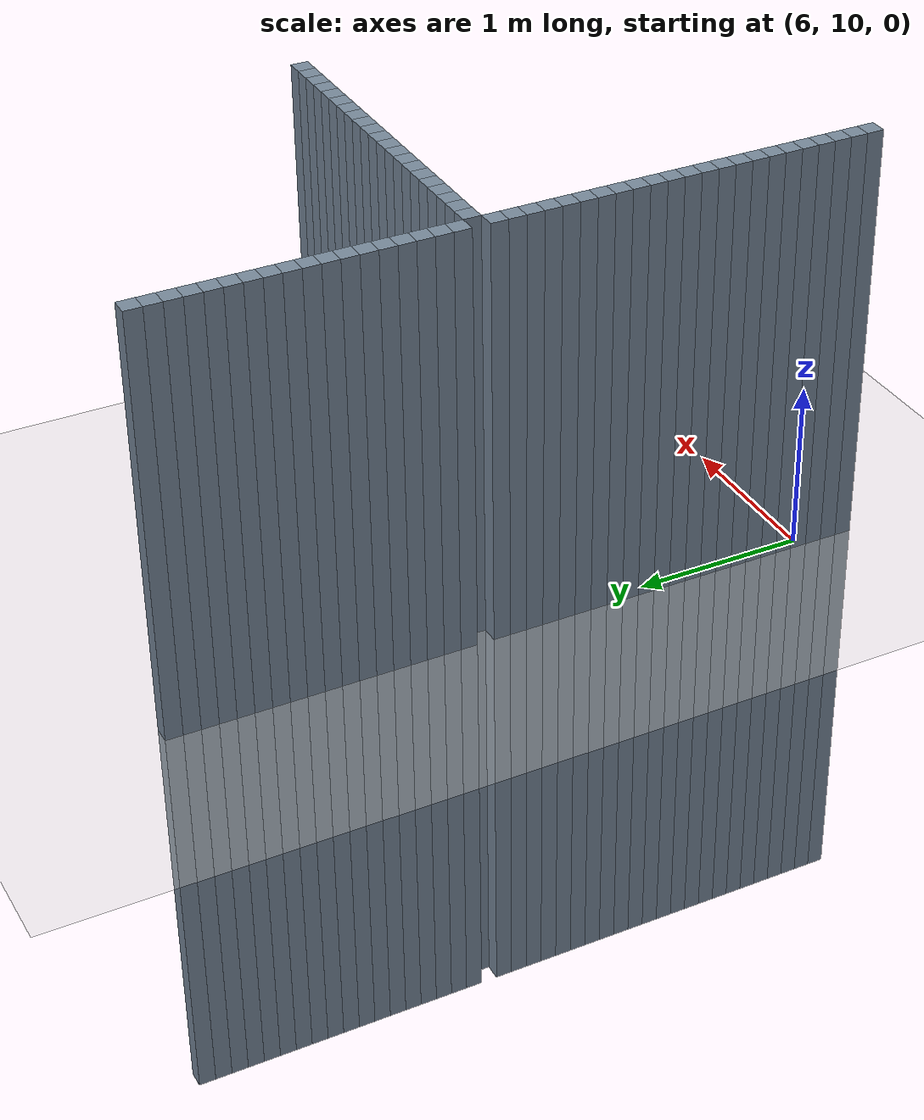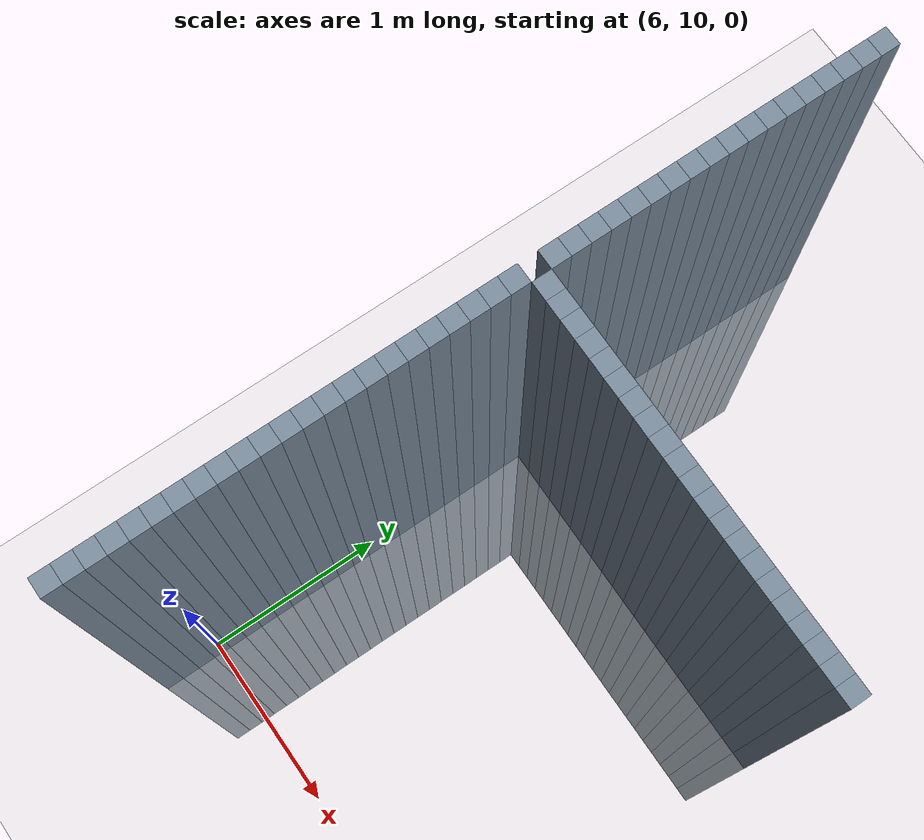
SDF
<sdf version="1.6">
 <world name="default">
  <model name="ground_plane">
   <static>1</static>
   <link name="link">
    <collision name="collision">
     <geometry><plane><normal>0 0 1</normal><size>100 100</size></plane></geometry>
     <surface><friction><ode><mu>100</mu><mu2>50</mu2></ode></friction></surface>
    </collision>
    <visual name="visual">
     <cast_shadows>0</cast_shadows>
     <geometry><plane><normal>0 0 1</normal><size>100 100</size></plane></geometry>
     <material>
      <script><uri>file://media/materials/scripts/gazebo.material</uri><name>Gazebo/Grey</name></script>
     </material>
    </visual>
   </link>
  </model>
  <model name="unit_cylinder_278">
   <static>1</static>
   <pose>6 9.7 0 0 -0 0</pose>
   <link name="link">
    <inertial>
     <mass>1</mass>
     <inertia><ixx>0.145833</ixx><ixy>0</ixy><ixz>0</ixz><iyy>0.145833</iyy><iyz>0</iyz><izz>0.125</izz></inertia>
    </inertial>
    <collision name="collision"><geometry><box><size>0.1 0.1 5</size></box></geometry></collision>
    <visual name="visual">
     <geometry><box><size>0.1 0.1 5</size></box></geometry>
     <material><ambient>0.466667 0.533333 0.6 1</ambient><diffuse>0.466667 0.533333 0.6 1</diffuse></material>
     <material>
      <script><name>Gazebo/Grey</name><uri>file://media/materials/scripts/gazebo.material</uri></script>
     </material>
    </visual>
   </link>
  </model>
  <model name="unit_cylinder_279">
   <static>1</static>
   <pose>6 9.8 0 0 -0 0</pose>
   <link name="link">
    <inertial>
     <mass>1</mass>
     <inertia><ixx>0.145833</ixx><ixy>0</ixy><ixz>0</ixz><iyy>0.145833</iyy><iyz>0</iyz><izz>0.125</izz></inertia>
    </inertial>
    <collision name="collision"><geometry><box><size>0.1 0.1 5</size></box></geometry></collision>
    <visual name="visual">
     <geometry><box><size>0.1 0.1 5</size></box></geometry>
     <material><ambient>0.466667 0.533333 0.6 1</ambient><diffuse>0.466667 0.533333 0.6 1</diffuse></material>
     <material>
      <script><name>Gazebo/Grey</name><uri>file://media/materials/scripts/gazebo.material</uri></script>
     </material>
    </visual>
   </link>
  </model>
  <model name="unit_cylinder_280">
   <static>1</static>
   <pose>6 9.9 0 0 -0 0</pose>
   <link name="link">
    <inertial>
     <mass>1</mass>
     <inertia><ixx>0.145833</ixx><ixy>0</ixy><ixz>0</ixz><iyy>0.145833</iyy><iyz>0</iyz><izz>0.125</izz></inertia>
    </inertial>
    <collision name="collision"><geometry><box><size>0.1 0.1 5</size></box></geometry></collision>
    <visual name="visual">
     <geometry><box><size>0.1 0.1 5</size></box></geometry>
     <material><ambient>0.466667 0.533333 0.6 1</ambient><diffuse>0.466667 0.533333 0.6 1</diffuse></material>
     <material>
      <script><name>Gazebo/Grey</name><uri>file://media/materials/scripts/gazebo.material</uri></script>
     </material>
    </visual>
   </link>
  </model>
  <model name="unit_cylinder_281">
   <static>1</static>
   <pose>6 10 0 0 -0 0</pose>
   <link name="link">
    <inertial>
     <mass>1</mass>
     <inertia><ixx>0.145833</ixx><ixy>0</ixy><ixz>0</ixz><iyy>0.145833</iyy><iyz>0</iyz><izz>0.125</izz></inertia>
    </inertial>
    <collision name="collision"><geometry><box><size>0.1 0.1 5</size></box></geometry></collision>
    <visual name="visual">
     <geometry><box><size>0.1 0.1 5</size></box></geometry>
     <material><ambient>0.466667 0.533333 0.6 1</ambient><diffuse>0.466667 0.533333 0.6 1</diffuse></material>
     <material>
      <script><name>Gazebo/Grey</name><uri>file://media/materials/scripts/gazebo.material</uri></script>
     </material>
    </visual>
   </link>
  </model>
  <model name="unit_cylinder_282">
   <static>1</static>
   <pose>6 10.1 0 0 -0 0</pose>
   <link name="link">
    <inertial>
     <mass>1</mass>
     <inertia><ixx>0.145833</ixx><ixy>0</ixy><ixz>0</ixz><iyy>0.145833</iyy><iyz>0</iyz><izz>0.125</izz></inertia>
    </inertial>
    <collision name="collision"><geometry><box><size>0.1 0.1 5</size></box></geometry></collision>
    <visual name="visual">
     <geometry><box><size>0.1 0.1 5</size></box></geometry>
     <material><ambient>0.466667 0.533333 0.6 1</ambient><diffuse>0.466667 0.533333 0.6 1</diffuse></material>
     <material>
      <script><name>Gazebo/Grey</name><uri>file://media/materials/scripts/gazebo.material</uri></script>
     </material>
    </visual>
   </link>
  </model>
  <model name="unit_cylinder_283">
   <static>1</static>
   <pose>6 10.2 0 0 -0 0</pose>
   <link name="link">
    <inertial>
     <mass>1</mass>
     <inertia><ixx>0.145833</ixx><ixy>0</ixy><ixz>0</ixz><iyy>0.145833</iyy><iyz>0</iyz><izz>0.125</izz></inertia>
    </inertial>
    <collision name="collision"><geometry><box><size>0.1 0.1 5</size></box></geometry></collision>
    <visual name="visual">
     <geometry><box><size>0.1 0.1 5</size></box></geometry>
     <material><ambient>0.466667 0.533333 0.6 1</ambient><diffuse>0.466667 0.533333 0.6 1</diffuse></material>
     <material>
      <script><name>Gazebo/Grey</name><uri>file://media/materials/scripts/gazebo.material</uri></script>
     </material>
    </visual>
   </link>
  </model>
  <model name="unit_cylinder_284">
   <static>1</static>
   <pose>6 10.3 0 0 -0 0</pose>
   <link name="link">
    <inertial>
     <mass>1</mass>
     <inertia><ixx>0.145833</ixx><ixy>0</ixy><ixz>0</ixz><iyy>0.145833</iyy><iyz>0</iyz><izz>0.125</izz></inertia>
    </inertial>
    <collision name="collision"><geometry><box><size>0.1 0.1 5</size></box></geometry></collision>
    <visual name="visual">
     <geometry><box><size>0.1 0.1 5</size></box></geometry>
     <material><ambient>0.466667 0.533333 0.6 1</ambient><diffuse>0.466667 0.533333 0.6 1</diffuse></material>
     <material>
      <script><name>Gazebo/Grey</name><uri>file://media/materials/scripts/gazebo.material</uri></script>
     </material>
    </visual>
   </link>
  </model>
  <model name="unit_cylinder_285">
   <static>1</static>
   <pose>6 10.4 0 0 -0 0</pose>
   <link name="link">
    <inertial>
     <mass>1</mass>
     <inertia><ixx>0.145833</ixx><ixy>0</ixy><ixz>0</ixz><iyy>0.145833</iyy><iyz>0</iyz><izz>0.125</izz></inertia>
    </inertial>
    <collision name="collision"><geometry><box><size>0.1 0.1 5</size></box></geometry></collision>
    <visual name="visual">
     <geometry><box><size>0.1 0.1 5</size></box></geometry>
     <material><ambient>0.466667 0.533333 0.6 1</ambient><diffuse>0.466667 0.533333 0.6 1</diffuse></material>
     <material>
      <script><name>Gazebo/Grey</name><uri>file://media/materials/scripts/gazebo.material</uri></script>
     </material>
    </visual>
   </link>
  </model>
  <model name="unit_cylinder_286">
   <static>1</static>
   <pose>6 10.5 0 0 -0 0</pose>
   <link name="link">
    <inertial>
     <mass>1</mass>
     <inertia><ixx>0.145833</ixx><ixy>0</ixy><ixz>0</ixz><iyy>0.145833</iyy><iyz>0</iyz><izz>0.125</izz></inertia>
    </inertial>
    <collision name="collision"><geometry><box><size>0.1 0.1 5</size></box></geometry></collision>
    <visual name="visual">
     <geometry><box><size>0.1 0.1 5</size></box></geometry>
     <material><ambient>0.466667 0.533333 0.6 1</ambient><diffuse>0.466667 0.533333 0.6 1</diffuse></material>
     <material>
      <script><name>Gazebo/Grey</name><uri>file://media/materials/scripts/gazebo.material</uri></script>
     </material>
    </visual>
   </link>
  </model>
  <model name="unit_cylinder_287">
   <static>1</static>
   <pose>6 10.6 0 0 -0 0</pose>
   <link name="link">
    <inertial>
     <mass>1</mass>
     <inertia><ixx>0.145833</ixx><ixy>0</ixy><ixz>0</ixz><iyy>0.145833</iyy><iyz>0</iyz><izz>0.125</izz></inertia>
    </inertial>
    <collision name="collision"><geometry><box><size>0.1 0.1 5</size></box></geometry></collision>
    <visual name="visual">
     <geometry><box><size>0.1 0.1 5</size></box></geometry>
     <material><ambient>0.466667 0.533333 0.6 1</ambient><diffuse>0.466667 0.533333 0.6 1</diffuse></material>
     <material>
      <script><name>Gazebo/Grey</name><uri>file://media/materials/scripts/gazebo.material</uri></script>
     </material>
    </visual>
   </link>
  </model>
  <model name="unit_cylinder_288">
   <static>1</static>
   <pose>6 10.7 0 0 -0 0</pose>
   <link name="link">
    <inertial>
     <mass>1</mass>
     <inertia><ixx>0.145833</ixx><ixy>0</ixy><ixz>0</ixz><iyy>0.145833</iyy><iyz>0</iyz><izz>0.125</izz></inertia>
    </inertial>
    <collision name="collision"><geometry><box><size>0.1 0.1 5</size></box></geometry></collision>
    <visual name="visual">
     <geometry><box><size>0.1 0.1 5</size></box></geometry>
     <material><ambient>0.466667 0.533333 0.6 1</ambient><diffuse>0.466667 0.533333 0.6 1</diffuse></material>
     <material>
      <script><name>Gazebo/Grey</name><uri>file://media/materials/scripts/gazebo.material</uri></script>
     </material>
    </visual>
   </link>
  </model>
  <model name="unit_cylinder_289">
   <static>1</static>
   <pose>6 10.8 0 0 -0 0</pose>
   <link name="link">
    <inertial>
     <mass>1</mass>
     <inertia><ixx>0.145833</ixx><ixy>0</ixy><ixz>0</ixz><iyy>0.145833</iyy><iyz>0</iyz><izz>0.125</izz></inertia>
    </inertial>
    <collision name="collision"><geometry><box><size>0.1 0.1 5</size></box></geometry></collision>
    <visual name="visual">
     <geometry><box><size>0.1 0.1 5</size></box></geometry>
     <material><ambient>0.466667 0.533333 0.6 1</ambient><diffuse>0.466667 0.533333 0.6 1</diffuse></material>
     <material>
      <script><name>Gazebo/Grey</name><uri>file://media/materials/scripts/gazebo.material</uri></script>
     </material>
    </visual>
   </link>
  </model>
  <model name="unit_cylinder_290">
   <static>1</static>
   <pose>6 10.9 0 0 -0 0</pose>
   <link name="link">
    <inertial>
     <mass>1</mass>
     <inertia><ixx>0.145833</ixx><ixy>0</ixy><ixz>0</ixz><iyy>0.145833</iyy><iyz>0</iyz><izz>0.125</izz></inertia>
    </inertial>
    <collision name="collision"><geometry><box><size>0.1 0.1 5</size></box></geometry></collision>
    <visual name="visual">
     <geometry><box><size>0.1 0.1 5</size></box></geometry>
     <material><ambient>0.466667 0.533333 0.6 1</ambient><diffuse>0.466667 0.533333 0.6 1</diffuse></material>
     <material>
      <script><name>Gazebo/Grey</name><uri>file://media/materials/scripts/gazebo.material</uri></script>
     </material>
    </visual>
   </link>
  </model>
  <model name="unit_cylinder_291">
   <static>1</static>
   <pose>6 11 0 0 -0 0</pose>
   <link name="link">
    <inertial>
     <mass>1</mass>
     <inertia><ixx>0.145833</ixx><ixy>0</ixy><ixz>0</ixz><iyy>0.145833</iyy><iyz>0</iyz><izz>0.125</izz></inertia>
    </inertial>
    <collision name="collision"><geometry><box><size>0.1 0.1 5</size></box></geometry></collision>
    <visual name="visual">
     <geometry><box><size>0.1 0.1 5</size></box></geometry>
     <material><ambient>0.466667 0.533333 0.6 1</ambient><diffuse>0.466667 0.533333 0.6 1</diffuse></material>
     <material>
      <script><name>Gazebo/Grey</name><uri>file://media/materials/scripts/gazebo.material</uri></script>
     </material>
    </visual>
   </link>
  </model>
  <model name="unit_cylinder_292">
   <static>1</static>
   <pose>6 11.1 0 0 -0 0</pose>
   <link name="link">
    <inertial>
     <mass>1</mass>
     <inertia><ixx>0.145833</ixx><ixy>0</ixy><ixz>0</ixz><iyy>0.145833</iyy><iyz>0</iyz><izz>0.125</izz></inertia>
    </inertial>
    <collision name="collision"><geometry><box><size>0.1 0.1 5</size></box></geometry></collision>
    <visual name="visual">
     <geometry><box><size>0.1 0.1 5</size></box></geometry>
     <material><ambient>0.466667 0.533333 0.6 1</ambient><diffuse>0.466667 0.533333 0.6 1</diffuse></material>
     <material>
      <script><name>Gazebo/Grey</name><uri>file://media/materials/scripts/gazebo.material</uri></script>
     </material>
    </visual>
   </link>
  </model>
  <model name="unit_cylinder_293">
   <static>1</static>
   <pose>6 11.2 0 0 -0 0</pose>
   <link name="link">
    <inertial>
     <mass>1</mass>
     <inertia><ixx>0.145833</ixx><ixy>0</ixy><ixz>0</ixz><iyy>0.145833</iyy><iyz>0</iyz><izz>0.125</izz></inertia>
    </inertial>
    <collision name="collision"><geometry><box><size>0.1 0.1 5</size></box></geometry></collision>
    <visual name="visual">
     <geometry><box><size>0.1 0.1 5</size></box></geometry>
     <material><ambient>0.466667 0.533333 0.6 1</ambient><diffuse>0.466667 0.533333 0.6 1</diffuse></material>
     <material>
      <script><name>Gazebo/Grey</name><uri>file://media/materials/scripts/gazebo.material</uri></script>
     </material>
    </visual>
   </link>
  </model>
  <model name="unit_cylinder_294">
   <static>1</static>
   <pose>6 11.3 0 0 -0 0</pose>
   <link name="link">
    <inertial>
     <mass>1</mass>
     <inertia><ixx>0.145833</ixx><ixy>0</ixy><ixz>0</ixz><iyy>0.145833</iyy><iyz>0</iyz><izz>0.125</izz></inertia>
    </inertial>
    <collision name="collision"><geometry><box><size>0.1 0.1 5</size></box></geometry></collision>
    <visual name="visual">
     <geometry><box><size>0.1 0.1 5</size></box></geometry>
     <material><ambient>0.466667 0.533333 0.6 1</ambient><diffuse>0.466667 0.533333 0.6 1</diffuse></material>
     <material>
      <script><name>Gazebo/Grey</name><uri>file://media/materials/scripts/gazebo.material</uri></script>
     </material>
    </visual>
   </link>
  </model>
  <model name="unit_cylinder_295">
   <static>1</static>
   <pose>6 11.4 0 0 -0 0</pose>
   <link name="link">
    <inertial>
     <mass>1</mass>
     <inertia><ixx>0.145833</ixx><ixy>0</ixy><ixz>0</ixz><iyy>0.145833</iyy><iyz>0</iyz><izz>0.125</izz></inertia>
    </inertial>
    <collision name="collision"><geometry><box><size>0.1 0.1 5</size></box></geometry></collision>
    <visual name="visual">
     <geometry><box><size>0.1 0.1 5</size></box></geometry>
     <material><ambient>0.466667 0.533333 0.6 1</ambient><diffuse>0.466667 0.533333 0.6 1</diffuse></material>
     <material>
      <script><name>Gazebo/Grey</name><uri>file://media/materials/scripts/gazebo.material</uri></script>
     </material>
    </visual>
   </link>
  </model>
  <model name="unit_cylinder_296">
   <static>1</static>
   <pose>6 11.5 0 0 -0 0</pose>
   <link name="link">
    <inertial>
     <mass>1</mass>
     <inertia><ixx>0.145833</ixx><ixy>0</ixy><ixz>0</ixz><iyy>0.145833</iyy><iyz>0</iyz><izz>0.125</izz></inertia>
    </inertial>
    <collision name="collision"><geometry><box><size>0.1 0.1 5</size></box></geometry></collision>
    <visual name="visual">
     <geometry><box><size>0.1 0.1 5</size></box></geometry>
     <material><ambient>0.466667 0.533333 0.6 1</ambient><diffuse>0.466667 0.533333 0.6 1</diffuse></material>
     <material>
      <script><name>Gazebo/Grey</name><uri>file://media/materials/scripts/gazebo.material</uri></script>
     </material>
    </visual>
   </link>
  </model>
  <model name="unit_cylinder_297">
   <static>1</static>
   <pose>6 11.6 0 0 -0 0</pose>
   <link name="link">
    <inertial>
     <mass>1</mass>
     <inertia><ixx>0.145833</ixx><ixy>0</ixy><ixz>0</ixz><iyy>0.145833</iyy><iyz>0</iyz><izz>0.125</izz></inertia>
    </inertial>
    <collision name="collision"><geometry><box><size>0.1 0.1 5</size></box></geometry></collision>
    <visual name="visual">
     <geometry><box><size>0.1 0.1 5</size></box></geometry>
     <material><ambient>0.466667 0.533333 0.6 1</ambient><diffuse>0.466667 0.533333 0.6 1</diffuse></material>
     <material>
      <script><name>Gazebo/Grey</name><uri>file://media/materials/scripts/gazebo.material</uri></script>
     </material>
    </visual>
   </link>
  </model>
  <model name="unit_cylinder_298">
   <static>1</static>
   <pose>6 11.7 0 0 -0 0</pose>
   <link name="link">
    <inertial>
     <mass>1</mass>
     <inertia><ixx>0.145833</ixx><ixy>0</ixy><ixz>0</ixz><iyy>0.145833</iyy><iyz>0</iyz><izz>0.125</izz></inertia>
    </inertial>
    <collision name="collision"><geometry><box><size>0.1 0.1 5</size></box></geometry></collision>
    <visual name="visual">
     <geometry><box><size>0.1 0.1 5</size></box></geometry>
     <material><ambient>0.466667 0.533333 0.6 1</ambient><diffuse>0.466667 0.533333 0.6 1</diffuse></material>
     <material>
      <script><name>Gazebo/Grey</name><uri>file://media/materials/scripts/gazebo.material</uri></script>
     </material>
    </visual>
   </link>
  </model>
  <model name="unit_cylinder_299">
   <static>1</static>
   <pose>6 11.8 0 0 -0 0</pose>
   <link name="link">
    <inertial>
     <mass>1</mass>
     <inertia><ixx>0.145833</ixx><ixy>0</ixy><ixz>0</ixz><iyy>0.145833</iyy><iyz>0</iyz><izz>0.125</izz></inertia>
    </inertial>
    <collision name="collision"><geometry><box><size>0.1 0.1 5</size></box></geometry></collision>
    <visual name="visual">
     <geometry><box><size>0.1 0.1 5</size></box></geometry>
     <material><ambient>0.466667 0.533333 0.6 1</ambient><diffuse>0.466667 0.533333 0.6 1</diffuse></material>
     <material>
      <script><name>Gazebo/Grey</name><uri>file://media/materials/scripts/gazebo.material</uri></script>
     </material>
    </visual>
   </link>
  </model>
  <model name="unit_cylinder_300">
   <static>1</static>
   <pose>6 11.9 0 0 -0 0</pose>
   <link name="link">
    <inertial>
     <mass>1</mass>
     <inertia><ixx>0.145833</ixx><ixy>0</ixy><ixz>0</ixz><iyy>0.145833</iyy><iyz>0</iyz><izz>0.125</izz></inertia>
    </inertial>
    <collision name="collision"><geometry><box><size>0.1 0.1 5</size></box></geometry></collision>
    <visual name="visual">
     <geometry><box><size>0.1 0.1 5</size></box></geometry>
     <material><ambient>0.466667 0.533333 0.6 1</ambient><diffuse>0.466667 0.533333 0.6 1</diffuse></material>
     <material>
      <script><name>Gazebo/Grey</name><uri>file://media/materials/scripts/gazebo.material</uri></script>
     </material>
    </visual>
   </link>
  </model>
  <model name="unit_cylinder_302">
   <static>1</static>
   <pose>6 12.1 0 0 -0 0</pose>
   <link name="link">
    <inertial>
     <mass>1</mass>
     <inertia><ixx>0.145833</ixx><ixy>0</ixy><ixz>0</ixz><iyy>0.145833</iyy><iyz>0</iyz><izz>0.125</izz></inertia>
    </inertial>
    <collision name="collision"><geometry><box><size>0.1 0.1 5</size></box></geometry></collision>
    <visual name="visual">
     <geometry><box><size>0.1 0.1 5</size></box></geometry>
     <material><ambient>0.466667 0.533333 0.6 1</ambient><diffuse>0.466667 0.533333 0.6 1</diffuse></material>
     <material>
      <script><name>Gazebo/Grey</name><uri>file://media/materials/scripts/gazebo.material</uri></script>
     </material>
    </visual>
   </link>
  </model>
  <model name="unit_cylinder_303">
   <static>1</static>
   <pose>6 12.2 0 0 -0 0</pose>
   <link name="link">
    <inertial>
     <mass>1</mass>
     <inertia><ixx>0.145833</ixx><ixy>0</ixy><ixz>0</ixz><iyy>0.145833</iyy><iyz>0</iyz><izz>0.125</izz></inertia>
    </inertial>
    <collision name="collision"><geometry><box><size>0.1 0.1 5</size></box></geometry></collision>
    <visual name="visual">
     <geometry><box><size>0.1 0.1 5</size></box></geometry>
     <material><ambient>0.466667 0.533333 0.6 1</ambient><diffuse>0.466667 0.533333 0.6 1</diffuse></material>
     <material>
      <script><name>Gazebo/Grey</name><uri>file://media/materials/scripts/gazebo.material</uri></script>
     </material>
    </visual>
   </link>
  </model>
  <model name="unit_cylinder_304">
   <static>1</static>
   <pose>6 12.3 0 0 -0 0</pose>
   <link name="link">
    <inertial>
     <mass>1</mass>
     <inertia><ixx>0.145833</ixx><ixy>0</ixy><ixz>0</ixz><iyy>0.145833</iyy><iyz>0</iyz><izz>0.125</izz></inertia>
    </inertial>
    <collision name="collision"><geometry><box><size>0.1 0.1 5</size></box></geometry></collision>
    <visual name="visual">
     <geometry><box><size>0.1 0.1 5</size></box></geometry>
     <material><ambient>0.466667 0.533333 0.6 1</ambient><diffuse>0.466667 0.533333 0.6 1</diffuse></material>
     <material>
      <script><name>Gazebo/Grey</name><uri>file://media/materials/scripts/gazebo.material</uri></script>
     </material>
    </visual>
   </link>
  </model>
  <model name="unit_cylinder_305">
   <static>1</static>
   <pose>6 12.4 0 0 -0 0</pose>
   <link name="link">
    <inertial>
     <mass>1</mass>
     <inertia><ixx>0.145833</ixx><ixy>0</ixy><ixz>0</ixz><iyy>0.145833</iyy><iyz>0</iyz><izz>0.125</izz></inertia>
    </inertial>
    <collision name="collision"><geometry><box><size>0.1 0.1 5</size></box></geometry></collision>
    <visual name="visual">
     <geometry><box><size>0.1 0.1 5</size></box></geometry>
     <material><ambient>0.466667 0.533333 0.6 1</ambient><diffuse>0.466667 0.533333 0.6 1</diffuse></material>
     <material>
      <script><name>Gazebo/Grey</name><uri>file://media/materials/scripts/gazebo.material</uri></script>
     </material>
    </visual>
   </link>
  </model>
  <model name="unit_cylinder_306">
   <static>1</static>
   <pose>6 12.5 0 0 -0 0</pose>
   <link name="link">
    <inertial>
     <mass>1</mass>
     <inertia><ixx>0.145833</ixx><ixy>0</ixy><ixz>0</ixz><iyy>0.145833</iyy><iyz>0</iyz><izz>0.125</izz></inertia>
    </inertial>
    <collision name="collision"><geometry><box><size>0.1 0.1 5</size></box></geometry></collision>
    <visual name="visual">
     <geometry><box><size>0.1 0.1 5</size></box></geometry>
     <material><ambient>0.466667 0.533333 0.6 1</ambient><diffuse>0.466667 0.533333 0.6 1</diffuse></material>
     <material>
      <script><name>Gazebo/Grey</name><uri>file://media/materials/scripts/gazebo.material</uri></script>
     </material>
    </visual>
   </link>
  </model>
  <model name="unit_cylinder_307">
   <static>1</static>
   <pose>6 12.6 0 0 -0 0</pose>
   <link name="link">
    <inertial>
     <mass>1</mass>
     <inertia><ixx>0.145833</ixx><ixy>0</ixy><ixz>0</ixz><iyy>0.145833</iyy><iyz>0</iyz><izz>0.125</izz></inertia>
    </inertial>
    <collision name="collision"><geometry><box><size>0.1 0.1 5</size></box></geometry></collision>
    <visual name="visual">
     <geometry><box><size>0.1 0.1 5</size></box></geometry>
     <material><ambient>0.466667 0.533333 0.6 1</ambient><diffuse>0.466667 0.533333 0.6 1</diffuse></material>
     <material>
      <script><name>Gazebo/Grey</name><uri>file://media/materials/scripts/gazebo.material</uri></script>
     </material>
    </visual>
   </link>
  </model>
  <model name="unit_cylinder_308">
   <static>1</static>
   <pose>6 12.7 0 0 -0 0</pose>
   <link name="link">
    <inertial>
     <mass>1</mass>
     <inertia><ixx>0.145833</ixx><ixy>0</ixy><ixz>0</ixz><iyy>0.145833</iyy><iyz>0</iyz><izz>0.125</izz></inertia>
    </inertial>
    <collision name="collision"><geometry><box><size>0.1 0.1 5</size></box></geometry></collision>
    <visual name="visual">
     <geometry><box><size>0.1 0.1 5</size></box></geometry>
     <material><ambient>0.466667 0.533333 0.6 1</ambient><diffuse>0.466667 0.533333 0.6 1</diffuse></material>
     <material>
      <script><name>Gazebo/Grey</name><uri>file://media/materials/scripts/gazebo.material</uri></script>
     </material>
    </visual>
   </link>
  </model>
  <model name="unit_cylinder_309">
   <static>1</static>
   <pose>6 12.8 0 0 -0 0</pose>
   <link name="link">
    <inertial>
     <mass>1</mass>
     <inertia><ixx>0.145833</ixx><ixy>0</ixy><ixz>0</ixz><iyy>0.145833</iyy><iyz>0</iyz><izz>0.125</izz></inertia>
    </inertial>
    <collision name="collision"><geometry><box><size>0.1 0.1 5</size></box></geometry></collision>
    <visual name="visual">
     <geometry><box><size>0.1 0.1 5</size></box></geometry>
     <material><ambient>0.466667 0.533333 0.6 1</ambient><diffuse>0.466667 0.533333 0.6 1</diffuse></material>
     <material>
      <script><name>Gazebo/Grey</name><uri>file://media/materials/scripts/gazebo.material</uri></script>
     </material>
    </visual>
   </link>
  </model>
  <model name="unit_cylinder_310">
   <static>1</static>
   <pose>6 12.9 0 0 -0 0</pose>
   <link name="link">
    <inertial>
     <mass>1</mass>
     <inertia><ixx>0.145833</ixx><ixy>0</ixy><ixz>0</ixz><iyy>0.145833</iyy><iyz>0</iyz><izz>0.125</izz></inertia>
    </inertial>
    <collision name="collision"><geometry><box><size>0.1 0.1 5</size></box></geometry></collision>
    <visual name="visual">
     <geometry><box><size>0.1 0.1 5</size></box></geometry>
     <material><ambient>0.466667 0.533333 0.6 1</ambient><diffuse>0.466667 0.533333 0.6 1</diffuse></material>
     <material>
      <script><name>Gazebo/Grey</name><uri>file://media/materials/scripts/gazebo.material</uri></script>
     </material>
    </visual>
   </link>
  </model>
  <model name="unit_cylinder_311">
   <static>1</static>
   <pose>6 13 0 0 -0 0</pose>
   <link name="link">
    <inertial>
     <mass>1</mass>
     <inertia><ixx>0.145833</ixx><ixy>0</ixy><ixz>0</ixz><iyy>0.145833</iyy><iyz>0</iyz><izz>0.125</izz></inertia>
    </inertial>
    <collision name="collision"><geometry><box><size>0.1 0.1 5</size></box></geometry></collision>
    <visual name="visual">
     <geometry><box><size>0.1 0.1 5</size></box></geometry>
     <material><ambient>0.466667 0.533333 0.6 1</ambient><diffuse>0.466667 0.533333 0.6 1</diffuse></material>
     <material>
      <script><name>Gazebo/Grey</name><uri>file://media/materials/scripts/gazebo.material</uri></script>
     </material>
    </visual>
   </link>
  </model>
  <model name="unit_cylinder_312">
   <static>1</static>
   <pose>6 13.1 0 0 -0 0</pose>
   <link name="link">
    <inertial>
     <mass>1</mass>
     <inertia><ixx>0.145833</ixx><ixy>0</ixy><ixz>0</ixz><iyy>0.145833</iyy><iyz>0</iyz><izz>0.125</izz></inertia>
    </inertial>
    <collision name="collision"><geometry><box><size>0.1 0.1 5</size></box></geometry></collision>
    <visual name="visual">
     <geometry><box><size>0.1 0.1 5</size></box></geometry>
     <material><ambient>0.466667 0.533333 0.6 1</ambient><diffuse>0.466667 0.533333 0.6 1</diffuse></material>
     <material>
      <script><name>Gazebo/Grey</name><uri>file://media/materials/scripts/gazebo.material</uri></script>
     </material>
    </visual>
   </link>
  </model>
  <model name="unit_cylinder_313">
   <static>1</static>
   <pose>6 13.2 0 0 -0 0</pose>
   <link name="link">
    <inertial>
     <mass>1</mass>
     <inertia><ixx>0.145833</ixx><ixy>0</ixy><ixz>0</ixz><iyy>0.145833</iyy><iyz>0</iyz><izz>0.125</izz></inertia>
    </inertial>
    <collision name="collision"><geometry><box><size>0.1 0.1 5</size></box></geometry></collision>
    <visual name="visual">
     <geometry><box><size>0.1 0.1 5</size></box></geometry>
     <material><ambient>0.466667 0.533333 0.6 1</ambient><diffuse>0.466667 0.533333 0.6 1</diffuse></material>
     <material>
      <script><name>Gazebo/Grey</name><uri>file://media/materials/scripts/gazebo.material</uri></script>
     </material>
    </visual>
   </link>
  </model>
  <model name="unit_cylinder_314">
   <static>1</static>
   <pose>6 13.3 0 0 -0 0</pose>
   <link name="link">
    <inertial>
     <mass>1</mass>
     <inertia><ixx>0.145833</ixx><ixy>0</ixy><ixz>0</ixz><iyy>0.145833</iyy><iyz>0</iyz><izz>0.125</izz></inertia>
    </inertial>
    <collision name="collision"><geometry><box><size>0.1 0.1 5</size></box></geometry></collision>
    <visual name="visual">
     <geometry><box><size>0.1 0.1 5</size></box></geometry>
     <material><ambient>0.466667 0.533333 0.6 1</ambient><diffuse>0.466667 0.533333 0.6 1</diffuse></material>
     <material>
      <script><name>Gazebo/Grey</name><uri>file://media/materials/scripts/gazebo.material</uri></script>
     </material>
    </visual>
   </link>
  </model>
  <model name="unit_cylinder_315">
   <static>1</static>
   <pose>6 13.4 0 0 -0 0</pose>
   <link name="link">
    <inertial>
     <mass>1</mass>
     <inertia><ixx>0.145833</ixx><ixy>0</ixy><ixz>0</ixz><iyy>0.145833</iyy><iyz>0</iyz><izz>0.125</izz></inertia>
    </inertial>
    <collision name="collision"><geometry><box><size>0.1 0.1 5</size></box></geometry></collision>
    <visual name="visual">
     <geometry><box><size>0.1 0.1 5</size></box></geometry>
     <material><ambient>0.466667 0.533333 0.6 1</ambient><diffuse>0.466667 0.533333 0.6 1</diffuse></material>
     <material>
      <script><name>Gazebo/Grey</name><uri>file://media/materials/scripts/gazebo.material</uri></script>
     </material>
    </visual>
   </link>
  </model>
  <model name="unit_cylinder_316">
   <static>1</static>
   <pose>6 13.5 0 0 -0 0</pose>
   <link name="link">
    <inertial>
     <mass>1</mass>
     <inertia><ixx>0.145833</ixx><ixy>0</ixy><ixz>0</ixz><iyy>0.145833</iyy><iyz>0</iyz><izz>0.125</izz></inertia>
    </inertial>
    <collision name="collision"><geometry><box><size>0.1 0.1 5</size></box></geometry></collision>
    <visual name="visual">
     <geometry><box><size>0.1 0.1 5</size></box></geometry>
     <material><ambient>0.466667 0.533333 0.6 1</ambient><diffuse>0.466667 0.533333 0.6 1</diffuse></material>
     <material>
      <script><name>Gazebo/Grey</name><uri>file://media/materials/scripts/gazebo.material</uri></script>
     </material>
    </visual>
   </link>
  </model>
  <model name="unit_cylinder_317">
   <static>1</static>
   <pose>6 13.6 0 0 -0 0</pose>
   <link name="link">
    <inertial>
     <mass>1</mass>
     <inertia><ixx>0.145833</ixx><ixy>0</ixy><ixz>0</ixz><iyy>0.145833</iyy><iyz>0</iyz><izz>0.125</izz></inertia>
    </inertial>
    <collision name="collision"><geometry><box><size>0.1 0.1 5</size></box></geometry></collision>
    <visual name="visual">
     <geometry><box><size>0.1 0.1 5</size></box></geometry>
     <material><ambient>0.466667 0.533333 0.6 1</ambient><diffuse>0.466667 0.533333 0.6 1</diffuse></material>
     <material>
      <script><name>Gazebo/Grey</name><uri>file://media/materials/scripts/gazebo.material</uri></script>
     </material>
    </visual>
   </link>
  </model>
  <model name="unit_cylinder_318">
   <static>1</static>
   <pose>6 13.7 0 0 -0 0</pose>
   <link name="link">
    <inertial>
     <mass>1</mass>
     <inertia><ixx>0.145833</ixx><ixy>0</ixy><ixz>0</ixz><iyy>0.145833</iyy><iyz>0</iyz><izz>0.125</izz></inertia>
    </inertial>
    <collision name="collision"><geometry><box><size>0.1 0.1 5</size></box></geometry></collision>
    <visual name="visual">
     <geometry><box><size>0.1 0.1 5</size></box></geometry>
     <material><ambient>0.466667 0.533333 0.6 1</ambient><diffuse>0.466667 0.533333 0.6 1</diffuse></material>
     <material>
      <script><name>Gazebo/Grey</name><uri>file://media/materials/scripts/gazebo.material</uri></script>
     </material>
    </visual>
   </link>
  </model>
  <model name="unit_cylinder_319">
   <static>1</static>
   <pose>6 13.8 0 0 -0 0</pose>
   <link name="link">
    <inertial>
     <mass>1</mass>
     <inertia><ixx>0.145833</ixx><ixy>0</ixy><ixz>0</ixz><iyy>0.145833</iyy><iyz>0</iyz><izz>0.125</izz></inertia>
    </inertial>
    <collision name="collision"><geometry><box><size>0.1 0.1 5</size></box></geometry></collision>
    <visual name="visual">
     <geometry><box><size>0.1 0.1 5</size></box></geometry>
     <material><ambient>0.466667 0.533333 0.6 1</ambient><diffuse>0.466667 0.533333 0.6 1</diffuse></material>
     <material>
      <script><name>Gazebo/Grey</name><uri>file://media/materials/scripts/gazebo.material</uri></script>
     </material>
    </visual>
   </link>
  </model>
  <model name="unit_cylinder_364">
   <static>1</static>
   <pose>6.1 12 0 0 -0 0</pose>
   <link name="link">
    <inertial>
     <mass>1</mass>
     <inertia><ixx>0.145833</ixx><ixy>0</ixy><ixz>0</ixz><iyy>0.145833</iyy><iyz>0</iyz><izz>0.125</izz></inertia>
    </inertial>
    <collision name="collision"><geometry><box><size>0.1 0.1 5</size></box></geometry></collision>
    <visual name="visual">
     <geometry><box><size>0.1 0.1 5</size></box></geometry>
     <material><ambient>0.466667 0.533333 0.6 1</ambient><diffuse>0.466667 0.533333 0.6 1</diffuse></material>
     <material>
      <script><name>Gazebo/Grey</name><uri>file://media/materials/scripts/gazebo.material</uri></script>
     </material>
    </visual>
   </link>
  </model>
  <model name="unit_cylinder_368">
   <static>1</static>
   <pose>6.2 12 0 0 -0 0</pose>
   <link name="link">
    <inertial>
     <mass>1</mass>
     <inertia><ixx>0.145833</ixx><ixy>0</ixy><ixz>0</ixz><iyy>0.145833</iyy><iyz>0</iyz><izz>0.125</izz></inertia>
    </inertial>
    <collision name="collision"><geometry><box><size>0.1 0.1 5</size></box></geometry></collision>
    <visual name="visual">
     <geometry><box><size>0.1 0.1 5</size></box></geometry>
     <material><ambient>0.466667 0.533333 0.6 1</ambient><diffuse>0.466667 0.533333 0.6 1</diffuse></material>
     <material>
      <script><name>Gazebo/Grey</name><uri>file://media/materials/scripts/gazebo.material</uri></script>
     </material>
    </visual>
   </link>
  </model>
  <model name="unit_cylinder_372">
   <static>1</static>
   <pose>6.3 12 0 0 -0 0</pose>
   <link name="link">
    <inertial>
     <mass>1</mass>
     <inertia><ixx>0.145833</ixx><ixy>0</ixy><ixz>0</ixz><iyy>0.145833</iyy><iyz>0</iyz><izz>0.125</izz></inertia>
    </inertial>
    <collision name="collision"><geometry><box><size>0.1 0.1 5</size></box></geometry></collision>
    <visual name="visual">
     <geometry><box><size>0.1 0.1 5</size></box></geometry>
     <material><ambient>0.466667 0.533333 0.6 1</ambient><diffuse>0.466667 0.533333 0.6 1</diffuse></material>
     <material>
      <script><name>Gazebo/Grey</name><uri>file://media/materials/scripts/gazebo.material</uri></script>
     </material>
    </visual>
   </link>
  </model>
  <model name="unit_cylinder_376">
   <static>1</static>
   <pose>6.4 12 0 0 -0 0</pose>
   <link name="link">
    <inertial>
     <mass>1</mass>
     <inertia><ixx>0.145833</ixx><ixy>0</ixy><ixz>0</ixz><iyy>0.145833</iyy><iyz>0</iyz><izz>0.125</izz></inertia>
    </inertial>
    <collision name="collision"><geometry><box><size>0.1 0.1 5</size></box></geometry></collision>
    <visual name="visual">
     <geometry><box><size>0.1 0.1 5</size></box></geometry>
     <material><ambient>0.466667 0.533333 0.6 1</ambient><diffuse>0.466667 0.533333 0.6 1</diffuse></material>
     <material>
      <script><name>Gazebo/Grey</name><uri>file://media/materials/scripts/gazebo.material</uri></script>
     </material>
    </visual>
   </link>
  </model>
  <model name="unit_cylinder_380">
   <static>1</static>
   <pose>6.5 12 0 0 -0 0</pose>
   <link name="link">
    <inertial>
     <mass>1</mass>
     <inertia><ixx>0.145833</ixx><ixy>0</ixy><ixz>0</ixz><iyy>0.145833</iyy><iyz>0</iyz><izz>0.125</izz></inertia>
    </inertial>
    <collision name="collision"><geometry><box><size>0.1 0.1 5</size></box></geometry></collision>
    <visual name="visual">
     <geometry><box><size>0.1 0.1 5</size></box></geometry>
     <material><ambient>0.466667 0.533333 0.6 1</ambient><diffuse>0.466667 0.533333 0.6 1</diffuse></material>
     <material>
      <script><name>Gazebo/Grey</name><uri>file://media/materials/scripts/gazebo.material</uri></script>
     </material>
    </visual>
   </link>
  </model>
  <model name="unit_cylinder_384">
   <static>1</static>
   <pose>6.6 12 0 0 -0 0</pose>
   <link name="link">
    <inertial>
     <mass>1</mass>
     <inertia><ixx>0.145833</ixx><ixy>0</ixy><ixz>0</ixz><iyy>0.145833</iyy><iyz>0</iyz><izz>0.125</izz></inertia>
    </inertial>
    <collision name="collision"><geometry><box><size>0.1 0.1 5</size></box></geometry></collision>
    <visual name="visual">
     <geometry><box><size>0.1 0.1 5</size></box></geometry>
     <material><ambient>0.466667 0.533333 0.6 1</ambient><diffuse>0.466667 0.533333 0.6 1</diffuse></material>
     <material>
      <script><name>Gazebo/Grey</name><uri>file://media/materials/scripts/gazebo.material</uri></script>
     </material>
    </visual>
   </link>
  </model>
  <model name="unit_cylinder_388">
   <static>1</static>
   <pose>6.7 12 0 0 -0 0</pose>
   <link name="link">
    <inertial>
     <mass>1</mass>
     <inertia><ixx>0.145833</ixx><ixy>0</ixy><ixz>0</ixz><iyy>0.145833</iyy><iyz>0</iyz><izz>0.125</izz></inertia>
    </inertial>
    <collision name="collision"><geometry><box><size>0.1 0.1 5</size></box></geometry></collision>
    <visual name="visual">
     <geometry><box><size>0.1 0.1 5</size></box></geometry>
     <material><ambient>0.466667 0.533333 0.6 1</ambient><diffuse>0.466667 0.533333 0.6 1</diffuse></material>
     <material>
      <script><name>Gazebo/Grey</name><uri>file://media/materials/scripts/gazebo.material</uri></script>
     </material>
    </visual>
   </link>
  </model>
  <model name="unit_cylinder_392">
   <static>1</static>
   <pose>6.8 12 0 0 -0 0</pose>
   <link name="link">
    <inertial>
     <mass>1</mass>
     <inertia><ixx>0.145833</ixx><ixy>0</ixy><ixz>0</ixz><iyy>0.145833</iyy><iyz>0</iyz><izz>0.125</izz></inertia>
    </inertial>
    <collision name="collision"><geometry><box><size>0.1 0.1 5</size></box></geometry></collision>
    <visual name="visual">
     <geometry><box><size>0.1 0.1 5</size></box></geometry>
     <material><ambient>0.466667 0.533333 0.6 1</ambient><diffuse>0.466667 0.533333 0.6 1</diffuse></material>
     <material>
      <script><name>Gazebo/Grey</name><uri>file://media/materials/scripts/gazebo.material</uri></script>
     </material>
    </visual>
   </link>
  </model>
  <model name="unit_cylinder_396">
   <static>1</static>
   <pose>6.9 12 0 0 -0 0</pose>
   <link name="link">
    <inertial>
     <mass>1</mass>
     <inertia><ixx>0.145833</ixx><ixy>0</ixy><ixz>0</ixz><iyy>0.145833</iyy><iyz>0</iyz><izz>0.125</izz></inertia>
    </inertial>
    <collision name="collision"><geometry><box><size>0.1 0.1 5</size></box></geometry></collision>
    <visual name="visual">
     <geometry><box><size>0.1 0.1 5</size></box></geometry>
     <material><ambient>0.466667 0.533333 0.6 1</ambient><diffuse>0.466667 0.533333 0.6 1</diffuse></material>
     <material>
      <script><name>Gazebo/Grey</name><uri>file://media/materials/scripts/gazebo.material</uri></script>
     </material>
    </visual>
   </link>
  </model>
  <model name="unit_cylinder_400">
   <static>1</static>
   <pose>7 12 0 0 -0 0</pose>
   <link name="link">
    <inertial>
     <mass>1</mass>
     <inertia><ixx>0.145833</ixx><ixy>0</ixy><ixz>0</ixz><iyy>0.145833</iyy><iyz>0</iyz><izz>0.125</izz></inertia>
    </inertial>
    <collision name="collision"><geometry><box><size>0.1 0.1 5</size></box></geometry></collision>
    <visual name="visual">
     <geometry><box><size>0.1 0.1 5</size></box></geometry>
     <material><ambient>0.466667 0.533333 0.6 1</ambient><diffuse>0.466667 0.533333 0.6 1</diffuse></material>
     <material>
      <script><name>Gazebo/Grey</name><uri>file://media/materials/scripts/gazebo.material</uri></script>
     </material>
    </visual>
   </link>
  </model>
  <model name="unit_cylinder_404">
   <static>1</static>
   <pose>7.1 12 0 0 -0 0</pose>
   <link name="link">
    <inertial>
     <mass>1</mass>
     <inertia><ixx>0.145833</ixx><ixy>0</ixy><ixz>0</ixz><iyy>0.145833</iyy><iyz>0</iyz><izz>0.125</izz></inertia>
    </inertial>
    <collision name="collision"><geometry><box><size>0.1 0.1 5</size></box></geometry></collision>
    <visual name="visual">
     <geometry><box><size>0.1 0.1 5</size></box></geometry>
     <material><ambient>0.466667 0.533333 0.6 1</ambient><diffuse>0.466667 0.533333 0.6 1</diffuse></material>
     <material>
      <script><name>Gazebo/Grey</name><uri>file://media/materials/scripts/gazebo.material</uri></script>
     </material>
    </visual>
   </link>
  </model>
  <model name="unit_cylinder_408">
   <static>1</static>
   <pose>7.2 12 0 0 -0 0</pose>
   <link name="link">
    <inertial>
     <mass>1</mass>
     <inertia><ixx>0.145833</ixx><ixy>0</ixy><ixz>0</ixz><iyy>0.145833</iyy><iyz>0</iyz><izz>0.125</izz></inertia>
    </inertial>
    <collision name="collision"><geometry><box><size>0.1 0.1 5</size></box></geometry></collision>
    <visual name="visual">
     <geometry><box><size>0.1 0.1 5</size></box></geometry>
     <material><ambient>0.466667 0.533333 0.6 1</ambient><diffuse>0.466667 0.533333 0.6 1</diffuse></material>
     <material>
      <script><name>Gazebo/Grey</name><uri>file://media/materials/scripts/gazebo.material</uri></script>
     </material>
    </visual>
   </link>
  </model>
  <model name="unit_cylinder_412">
   <static>1</static>
   <pose>7.3 12 0 0 -0 0</pose>
   <link name="link">
    <inertial>
     <mass>1</mass>
     <inertia><ixx>0.145833</ixx><ixy>0</ixy><ixz>0</ixz><iyy>0.145833</iyy><iyz>0</iyz><izz>0.125</izz></inertia>
    </inertial>
    <collision name="collision"><geometry><box><size>0.1 0.1 5</size></box></geometry></collision>
    <visual name="visual">
     <geometry><box><size>0.1 0.1 5</size></box></geometry>
     <material><ambient>0.466667 0.533333 0.6 1</ambient><diffuse>0.466667 0.533333 0.6 1</diffuse></material>
     <material>
      <script><name>Gazebo/Grey</name><uri>file://media/materials/scripts/gazebo.material</uri></script>
     </material>
    </visual>
   </link>
  </model>
  <model name="unit_cylinder_416">
   <static>1</static>
   <pose>7.4 12 0 0 -0 0</pose>
   <link name="link">
    <inertial>
     <mass>1</mass>
     <inertia><ixx>0.145833</ixx><ixy>0</ixy><ixz>0</ixz><iyy>0.145833</iyy><iyz>0</iyz><izz>0.125</izz></inertia>
    </inertial>
    <collision name="collision"><geometry><box><size>0.1 0.1 5</size></box></geometry></collision>
    <visual name="visual">
     <geometry><box><size>0.1 0.1 5</size></box></geometry>
     <material><ambient>0.466667 0.533333 0.6 1</ambient><diffuse>0.466667 0.533333 0.6 1</diffuse></material>
     <material>
      <script><name>Gazebo/Grey</name><uri>file://media/materials/scripts/gazebo.material</uri></script>
     </material>
    </visual>
   </link>
  </model>
  <model name="unit_cylinder_420">
   <static>1</static>
   <pose>7.5 12 0 0 -0 0</pose>
   <link name="link">
    <inertial>
     <mass>1</mass>
     <inertia><ixx>0.145833</ixx><ixy>0</ixy><ixz>0</ixz><iyy>0.145833</iyy><iyz>0</iyz><izz>0.125</izz></inertia>
    </inertial>
    <collision name="collision"><geometry><box><size>0.1 0.1 5</size></box></geometry></collision>
    <visual name="visual">
     <geometry><box><size>0.1 0.1 5</size></box></geometry>
     <material><ambient>0.466667 0.533333 0.6 1</ambient><diffuse>0.466667 0.533333 0.6 1</diffuse></material>
     <material>
      <script><name>Gazebo/Grey</name><uri>file://media/materials/scripts/gazebo.material</uri></script>
     </material>
    </visual>
   </link>
  </model>
  <model name="unit_cylinder_424">
   <static>1</static>
   <pose>7.6 12 0 0 -0 0</pose>
   <link name="link">
    <inertial>
     <mass>1</mass>
     <inertia><ixx>0.145833</ixx><ixy>0</ixy><ixz>0</ixz><iyy>0.145833</iyy><iyz>0</iyz><izz>0.125</izz></inertia>
    </inertial>
    <collision name="collision"><geometry><box><size>0.1 0.1 5</size></box></geometry></collision>
    <visual name="visual">
     <geometry><box><size>0.1 0.1 5</size></box></geometry>
     <material><ambient>0.466667 0.533333 0.6 1</ambient><diffuse>0.466667 0.533333 0.6 1</diffuse></material>
     <material>
      <script><name>Gazebo/Grey</name><uri>file://media/materials/scripts/gazebo.material</uri></script>
     </material>
    </visual>
   </link>
  </model>
  <model name="unit_cylinder_428">
   <static>1</static>
   <pose>7.7 12 0 0 -0 0</pose>
   <link name="link">
    <inertial>
     <mass>1</mass>
     <inertia><ixx>0.145833</ixx><ixy>0</ixy><ixz>0</ixz><iyy>0.145833</iyy><iyz>0</iyz><izz>0.125</izz></inertia>
    </inertial>
    <collision name="collision"><geometry><box><size>0.1 0.1 5</size></box></geometry></collision>
    <visual name="visual">
     <geometry><box><size>0.1 0.1 5</size></box></geometry>
     <material><ambient>0.466667 0.533333 0.6 1</ambient><diffuse>0.466667 0.533333 0.6 1</diffuse></material>
     <material>
      <script><name>Gazebo/Grey</name><uri>file://media/materials/scripts/gazebo.material</uri></script>
     </material>
    </visual>
   </link>
  </model>
  <model name="unit_cylinder_432">
   <static>1</static>
   <pose>7.8 12 0 0 -0 0</pose>
   <link name="link">
    <inertial>
     <mass>1</mass>
     <inertia><ixx>0.145833</ixx><ixy>0</ixy><ixz>0</ixz><iyy>0.145833</iyy><iyz>0</iyz><izz>0.125</izz></inertia>
    </inertial>
    <collision name="collision"><geometry><box><size>0.1 0.1 5</size></box></geometry></collision>
    <visual name="visual">
     <geometry><box><size>0.1 0.1 5</size></box></geometry>
     <material><ambient>0.466667 0.533333 0.6 1</ambient><diffuse>0.466667 0.533333 0.6 1</diffuse></material>
     <material>
      <script><name>Gazebo/Grey</name><uri>file://media/materials/scripts/gazebo.material</uri></script>
     </material>
    </visual>
   </link>
  </model>
  <model name="unit_cylinder_436">
   <static>1</static>
   <pose>7.9 12 0 0 -0 0</pose>
   <link name="link">
    <inertial>
     <mass>1</mass>
     <inertia><ixx>0.145833</ixx><ixy>0</ixy><ixz>0</ixz><iyy>0.145833</iyy><iyz>0</iyz><izz>0.125</izz></inertia>
    </inertial>
    <collision name="collision"><geometry><box><size>0.1 0.1 5</size></box></geometry></collision>
    <visual name="visual">
     <geometry><box><size>0.1 0.1 5</size></box></geometry>
     <material><ambient>0.466667 0.533333 0.6 1</ambient><diffuse>0.466667 0.533333 0.6 1</diffuse></material>
     <material>
      <script><name>Gazebo/Grey</name><uri>file://media/materials/scripts/gazebo.material</uri></script>
     </material>
    </visual>
   </link>
  </model>
  <model name="unit_cylinder_440">
   <static>1</static>
   <pose>8 12 0 0 -0 0</pose>
   <link name="link">
    <inertial>
     <mass>1</mass>
     <inertia><ixx>0.145833</ixx><ixy>0</ixy><ixz>0</ixz><iyy>0.145833</iyy><iyz>0</iyz><izz>0.125</izz></inertia>
    </inertial>
    <collision name="collision"><geometry><box><size>0.1 0.1 5</size></box></geometry></collision>
    <visual name="visual">
     <geometry><box><size>0.1 0.1 5</size></box></geometry>
     <material><ambient>0.466667 0.533333 0.6 1</ambient><diffuse>0.466667 0.533333 0.6 1</diffuse></material>
     <material>
      <script><name>Gazebo/Grey</name><uri>file://media/materials/scripts/gazebo.material</uri></script>
     </material>
    </visual>
   </link>
  </model>
  <model name="unit_cylinder_444">
   <static>1</static>
   <pose>8.1 12 0 0 -0 0</pose>
   <link name="link">
    <inertial>
     <mass>1</mass>
     <inertia><ixx>0.145833</ixx><ixy>0</ixy><ixz>0</ixz><iyy>0.145833</iyy><iyz>0</iyz><izz>0.125</izz></inertia>
    </inertial>
    <collision name="collision"><geometry><box><size>0.1 0.1 5</size></box></geometry></collision>
    <visual name="visual">
     <geometry><box><size>0.1 0.1 5</size></box></geometry>
     <material><ambient>0.466667 0.533333 0.6 1</ambient><diffuse>0.466667 0.533333 0.6 1</diffuse></material>
     <material>
      <script><name>Gazebo/Grey</name><uri>file://media/materials/scripts/gazebo.material</uri></script>
     </material>
    </visual>
   </link>
  </model>
 </world>
</sdf>
